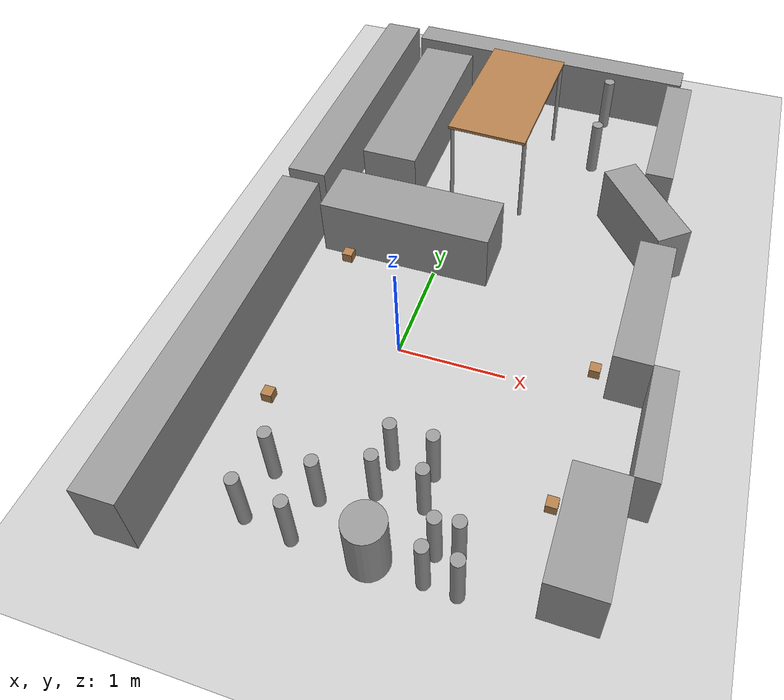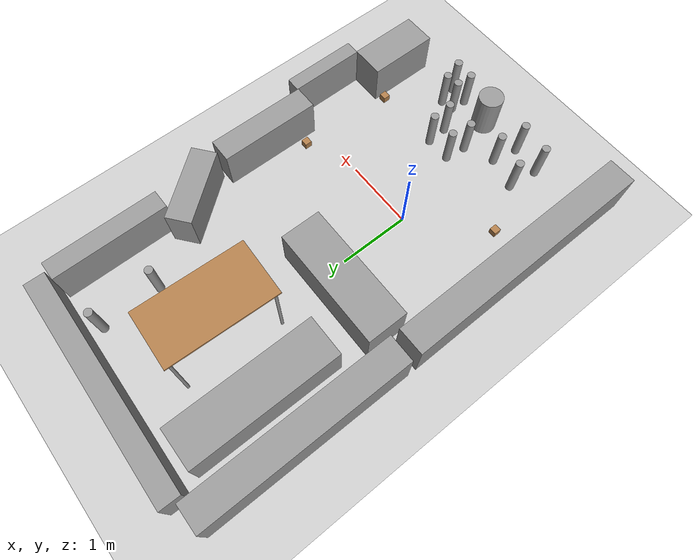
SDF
<sdf version="1.6">
 <world name="default">
  <light name="sun" type="directional">
   <pose>0 0 10 0 -0 0</pose>
   <diffuse>0.8 0.8 0.8 1</diffuse>
   <specular>0.2 0.2 0.2 1</specular>
   <attenuation>
    <range>1000</range>
    <constant>0.9</constant>
    <linear>0.01</linear>
    <quadratic>0.001</quadratic>
   </attenuation>
   <direction>-0.5 0.1 -0.9</direction>
  </light>
  <model name="ground_plane">
   <static>1</static>
   <link name="link">
    <collision name="collision">
     <geometry><plane><normal>0 0 1</normal><size>100 100</size></plane></geometry>
     <surface><friction><ode><mu>100</mu><mu2>50</mu2></ode></friction></surface>
    </collision>
    <visual name="visual">
     <cast_shadows>0</cast_shadows>
     <geometry><plane><normal>0 0 1</normal><size>100 100</size></plane></geometry>
     <material>
      <script><uri>file://media/materials/scripts/gazebo.material</uri><name>Gazebo/Grey</name></script>
     </material>
    </visual>
   </link>
  </model>
  <gravity>0 0 -9.8</gravity>
  <magnetic_field>6e-06 2.3e-05 -4.2e-05</magnetic_field>
  <atmosphere type="adiabatic"/>
  <physics name="default_physics" default="0" type="ode">
   <max_step_size>0.001</max_step_size>
   <real_time_factor>1</real_time_factor>
   <real_time_update_rate>1000</real_time_update_rate>
  </physics>
  <scene><ambient>0.4 0.4 0.4 1</ambient><background>0.7 0.7 0.7 1</background><shadows>1</shadows></scene>
  <spherical_coordinates>
   <surface_model>EARTH_WGS84</surface_model>
   <latitude_deg>0</latitude_deg>
   <longitude_deg>0</longitude_deg>
   <elevation>0</elevation>
   <heading_deg>0</heading_deg>
  </spherical_coordinates>
  <model name="unit_box">
   <pose>-0.311795 1.28478 0.303688 9e-06 -0 -0.001875</pose>
   <link name="link">
    <inertial>
     <mass>1</mass>
     <inertia>
      <ixx>0.166667</ixx>
      <ixy>0</ixy>
      <ixz>0</ixz>
      <iyy>0.166667</iyy>
      <iyz>0</iyz>
      <izz>0.166667</izz>
     </inertia>
    </inertial>
    <collision name="collision"><geometry><box><size>1.70206 0.569629 0.607381</size></box></geometry></collision>
    <visual name="visual">
     <geometry><box><size>1.70206 0.569629 0.607381</size></box></geometry>
     <material>
      <script><name>Gazebo/Grey</name><uri>file://media/materials/scripts/gazebo.material</uri></script>
     </material>
    </visual>
   </link>
  </model>
  <model name="unit_cylinder">
   <pose>0.358444 -1.12504 0.304923 0 -0 0.001372</pose>
   <link name="link">
    <inertial>
     <mass>1</mass>
     <inertia><ixx>0.145833</ixx><ixy>0</ixy><ixz>0</ixz><iyy>0.145833</iyy><iyz>0</iyz><izz>0.125</izz></inertia>
    </inertial>
    <collision name="collision">
     <geometry><cylinder><radius>0.056641</radius><length>0.609856</length></cylinder></geometry>
    </collision>
    <visual name="visual">
     <geometry><cylinder><radius>0.056641</radius><length>0.609856</length></cylinder></geometry>
     <material>
      <script><name>Gazebo/Grey</name><uri>file://media/materials/scripts/gazebo.material</uri></script>
     </material>
    </visual>
   </link>
  </model>
  <model name="unit_cylinder_clone">
   <pose>0.712411 -1.12237 0.304923 0 -0 0.001089</pose>
   <link name="link">
    <inertial>
     <mass>1</mass>
     <inertia><ixx>0.145833</ixx><ixy>0</ixy><ixz>0</ixz><iyy>0.145833</iyy><iyz>0</iyz><izz>0.125</izz></inertia>
    </inertial>
    <collision name="collision">
     <geometry><cylinder><radius>0.056641</radius><length>0.609856</length></cylinder></geometry>
    </collision>
    <visual name="visual">
     <geometry><cylinder><radius>0.056641</radius><length>0.609856</length></cylinder></geometry>
     <material>
      <script><name>Gazebo/Grey</name><uri>file://media/materials/scripts/gazebo.material</uri></script>
     </material>
    </visual>
   </link>
  </model>
  <model name="unit_cylinder_clone_0">
   <pose>0.321199 -1.42245 0.304923 0 -0 0.003382</pose>
   <link name="link">
    <inertial>
     <mass>1</mass>
     <inertia><ixx>0.145833</ixx><ixy>0</ixy><ixz>0</ixz><iyy>0.145833</iyy><iyz>0</iyz><izz>0.125</izz></inertia>
    </inertial>
    <collision name="collision">
     <geometry><cylinder><radius>0.056641</radius><length>0.609856</length></cylinder></geometry>
    </collision>
    <visual name="visual">
     <geometry><cylinder><radius>0.056641</radius><length>0.609856</length></cylinder></geometry>
     <material>
      <script><name>Gazebo/Grey</name><uri>file://media/materials/scripts/gazebo.material</uri></script>
     </material>
    </visual>
   </link>
  </model>
  <model name="unit_cylinder_clone_1">
   <pose>0.730387 -1.41571 0.304923 0 -0 0.00321</pose>
   <link name="link">
    <inertial>
     <mass>1</mass>
     <inertia><ixx>0.145833</ixx><ixy>0</ixy><ixz>0</ixz><iyy>0.145833</iyy><iyz>0</iyz><izz>0.125</izz></inertia>
    </inertial>
    <collision name="collision">
     <geometry><cylinder><radius>0.056641</radius><length>0.609856</length></cylinder></geometry>
    </collision>
    <visual name="visual">
     <geometry><cylinder><radius>0.056641</radius><length>0.609856</length></cylinder></geometry>
     <material>
      <script><name>Gazebo/Grey</name><uri>file://media/materials/scripts/gazebo.material</uri></script>
     </material>
    </visual>
   </link>
  </model>
  <model name="unit_cylinder_clone_2">
   <pose>0.46977 -1.94113 0.304924 0 -0 0.000112</pose>
   <link name="link">
    <inertial>
     <mass>1</mass>
     <inertia><ixx>0.145833</ixx><ixy>0</ixy><ixz>0</ixz><iyy>0.145833</iyy><iyz>0</iyz><izz>0.125</izz></inertia>
    </inertial>
    <collision name="collision">
     <geometry><cylinder><radius>0.174974</radius><length>0.609856</length></cylinder></geometry>
    </collision>
    <visual name="visual">
     <geometry><cylinder><radius>0.174974</radius><length>0.609856</length></cylinder></geometry>
     <material>
      <script><name>Gazebo/Grey</name><uri>file://media/materials/scripts/gazebo.material</uri></script>
     </material>
    </visual>
   </link>
  </model>
  <model name="unit_cylinder_clone_3">
   <pose>-0.085979 -1.60546 0.304919 0 -0 0.007193</pose>
   <link name="link">
    <inertial>
     <mass>1</mass>
     <inertia><ixx>0.145833</ixx><ixy>0</ixy><ixz>0</ixz><iyy>0.145833</iyy><iyz>0</iyz><izz>0.125</izz></inertia>
    </inertial>
    <collision name="collision">
     <geometry><cylinder><radius>0.056641</radius><length>0.609856</length></cylinder></geometry>
    </collision>
    <visual name="visual">
     <geometry><cylinder><radius>0.056641</radius><length>0.609856</length></cylinder></geometry>
     <material>
      <script><name>Gazebo/Grey</name><uri>file://media/materials/scripts/gazebo.material</uri></script>
     </material>
    </visual>
   </link>
  </model>
  <model name="unit_cylinder_clone_4">
   <pose>-0.157879 -1.97568 0.304923 0 -0 0.003248</pose>
   <link name="link">
    <inertial>
     <mass>1</mass>
     <inertia><ixx>0.145833</ixx><ixy>0</ixy><ixz>0</ixz><iyy>0.145833</iyy><iyz>0</iyz><izz>0.125</izz></inertia>
    </inertial>
    <collision name="collision">
     <geometry><cylinder><radius>0.056641</radius><length>0.609856</length></cylinder></geometry>
    </collision>
    <visual name="visual">
     <geometry><cylinder><radius>0.056641</radius><length>0.609856</length></cylinder></geometry>
     <material>
      <script><name>Gazebo/Grey</name><uri>file://media/materials/scripts/gazebo.material</uri></script>
     </material>
    </visual>
   </link>
  </model>
  <model name="unit_cylinder_clone_5">
   <pose>-0.58124 -1.92098 0.304923 0 -0 0.00161</pose>
   <link name="link">
    <inertial>
     <mass>1</mass>
     <inertia><ixx>0.145833</ixx><ixy>0</ixy><ixz>0</ixz><iyy>0.145833</iyy><iyz>0</iyz><izz>0.125</izz></inertia>
    </inertial>
    <collision name="collision">
     <geometry><cylinder><radius>0.056641</radius><length>0.609856</length></cylinder></geometry>
    </collision>
    <visual name="visual">
     <geometry><cylinder><radius>0.056641</radius><length>0.609856</length></cylinder></geometry>
     <material>
      <script><name>Gazebo/Grey</name><uri>file://media/materials/scripts/gazebo.material</uri></script>
     </material>
    </visual>
   </link>
  </model>
  <model name="unit_cylinder_clone_6">
   <pose>-0.529377 -1.49074 0.304923 0 -0 0.001482</pose>
   <link name="link">
    <inertial>
     <mass>1</mass>
     <inertia><ixx>0.145833</ixx><ixy>0</ixy><ixz>0</ixz><iyy>0.145833</iyy><iyz>0</iyz><izz>0.125</izz></inertia>
    </inertial>
    <collision name="collision">
     <geometry><cylinder><radius>0.056641</radius><length>0.609856</length></cylinder></geometry>
    </collision>
    <visual name="visual">
     <geometry><cylinder><radius>0.056641</radius><length>0.609856</length></cylinder></geometry>
     <material>
      <script><name>Gazebo/Grey</name><uri>file://media/materials/scripts/gazebo.material</uri></script>
     </material>
    </visual>
   </link>
  </model>
  <model name="unit_box_clone_0">
   <pose>2.05284 0.7583 0.30369 0 -2e-06 1.56582</pose>
   <link name="link">
    <inertial>
     <mass>1</mass>
     <inertia>
      <ixx>0.166667</ixx>
      <ixy>0</ixy>
      <ixz>0</ixz>
      <iyy>0.166667</iyy>
      <iyz>0</iyz>
      <izz>0.166667</izz>
     </inertia>
    </inertial>
    <collision name="collision"><geometry><box><size>1.41671 0.339182 0.607382</size></box></geometry></collision>
    <visual name="visual">
     <geometry><box><size>1.41671 0.339182 0.607382</size></box></geometry>
     <material>
      <script><name>Gazebo/Grey</name><uri>file://media/materials/scripts/gazebo.material</uri></script>
     </material>
    </visual>
   </link>
  </model>
  <model name="unit_box_clone_0_clone">
   <pose>2.32529 -0.466885 0.303691 -2e-06 -0 1.57305</pose>
   <link name="link">
    <inertial>
     <mass>1</mass>
     <inertia>
      <ixx>0.166667</ixx>
      <ixy>0</ixy>
      <ixz>0</ixz>
      <iyy>0.166667</iyy>
      <iyz>0</iyz>
      <izz>0.166667</izz>
     </inertia>
    </inertial>
    <collision name="collision"><geometry><box><size>1.06223 0.205529 0.607382</size></box></geometry></collision>
    <visual name="visual">
     <geometry><box><size>1.06223 0.205529 0.607382</size></box></geometry>
     <material>
      <script><name>Gazebo/Grey</name><uri>file://media/materials/scripts/gazebo.material</uri></script>
     </material>
    </visual>
   </link>
  </model>
  <model name="unit_box_clone_0_clone_0">
   <pose>2.00281 -1.48758 0.303691 0 -0 1.57205</pose>
   <link name="link">
    <inertial>
     <mass>1</mass>
     <inertia>
      <ixx>0.166667</ixx>
      <ixy>0</ixy>
      <ixz>0</ixz>
      <iyy>0.166667</iyy>
      <iyz>0</iyz>
      <izz>0.166667</izz>
     </inertia>
    </inertial>
    <collision name="collision">
     <geometry><box><size>0.978144 0.467544 0.607382</size></box></geometry>
    </collision>
    <visual name="visual">
     <geometry><box><size>0.978144 0.467544 0.607382</size></box></geometry>
     <material>
      <script><name>Gazebo/Grey</name><uri>file://media/materials/scripts/gazebo.material</uri></script>
     </material>
    </visual>
   </link>
  </model>
  <model name="unit_cylinder_clone_1_clone">
   <pose>0.932287 -1.75458 0.304921 0 -0 0.006499</pose>
   <link name="link">
    <inertial>
     <mass>1</mass>
     <inertia><ixx>0.145833</ixx><ixy>0</ixy><ixz>0</ixz><iyy>0.145833</iyy><iyz>0</iyz><izz>0.125</izz></inertia>
    </inertial>
    <collision name="collision">
     <geometry><cylinder><radius>0.056641</radius><length>0.609856</length></cylinder></geometry>
    </collision>
    <visual name="visual">
     <geometry><cylinder><radius>0.056641</radius><length>0.609856</length></cylinder></geometry>
     <material>
      <script><name>Gazebo/Grey</name><uri>file://media/materials/scripts/gazebo.material</uri></script>
     </material>
    </visual>
   </link>
  </model>
  <model name="unit_cylinder_clone_1_clone_0">
   <pose>1.11421 -1.72835 0.304923 0 -0 0.002377</pose>
   <link name="link">
    <inertial>
     <mass>1</mass>
     <inertia><ixx>0.145833</ixx><ixy>0</ixy><ixz>0</ixz><iyy>0.145833</iyy><iyz>0</iyz><izz>0.125</izz></inertia>
    </inertial>
    <collision name="collision">
     <geometry><cylinder><radius>0.056641</radius><length>0.609856</length></cylinder></geometry>
    </collision>
    <visual name="visual">
     <geometry><cylinder><radius>0.056641</radius><length>0.609856</length></cylinder></geometry>
     <material>
      <script><name>Gazebo/Grey</name><uri>file://media/materials/scripts/gazebo.material</uri></script>
     </material>
    </visual>
   </link>
  </model>
  <model name="unit_cylinder_clone_1_clone_1">
   <pose>0.917272 -1.98464 0.304923 0 -0 0.002041</pose>
   <link name="link">
    <inertial>
     <mass>1</mass>
     <inertia><ixx>0.145833</ixx><ixy>0</ixy><ixz>0</ixz><iyy>0.145833</iyy><iyz>0</iyz><izz>0.125</izz></inertia>
    </inertial>
    <collision name="collision">
     <geometry><cylinder><radius>0.056641</radius><length>0.609856</length></cylinder></geometry>
    </collision>
    <visual name="visual">
     <geometry><cylinder><radius>0.056641</radius><length>0.609856</length></cylinder></geometry>
     <material>
      <script><name>Gazebo/Grey</name><uri>file://media/materials/scripts/gazebo.material</uri></script>
     </material>
    </visual>
   </link>
  </model>
  <model name="unit_cylinder_clone_1_clone_2">
   <pose>1.18677 -1.99872 0.304923 0 -0 0.003244</pose>
   <link name="link">
    <inertial>
     <mass>1</mass>
     <inertia><ixx>0.145833</ixx><ixy>0</ixy><ixz>0</ixz><iyy>0.145833</iyy><iyz>0</iyz><izz>0.125</izz></inertia>
    </inertial>
    <collision name="collision">
     <geometry><cylinder><radius>0.056641</radius><length>0.609856</length></cylinder></geometry>
    </collision>
    <visual name="visual">
     <geometry><cylinder><radius>0.056641</radius><length>0.609856</length></cylinder></geometry>
     <material>
      <script><name>Gazebo/Grey</name><uri>file://media/materials/scripts/gazebo.material</uri></script>
     </material>
    </visual>
   </link>
  </model>
  <model name="unit_box_clone_0_clone_clone">
   <pose>1.85681 2.03101 0.303691 0 -0 2.24562</pose>
   <link name="link">
    <inertial>
     <mass>1</mass>
     <inertia>
      <ixx>0.166667</ixx>
      <ixy>0</ixy>
      <ixz>0</ixz>
      <iyy>0.166667</iyy>
      <iyz>0</iyz>
      <izz>0.166667</izz>
     </inertia>
    </inertial>
    <collision name="collision"><geometry><box><size>1.06223 0.356426 0.607382</size></box></geometry></collision>
    <visual name="visual">
     <geometry><box><size>1.06223 0.356426 0.607382</size></box></geometry>
     <material>
      <script><name>Gazebo/Grey</name><uri>file://media/materials/scripts/gazebo.material</uri></script>
     </material>
    </visual>
   </link>
  </model>
  <model name="unit_box_clone_1">
   <pose>-0.782095 2.92848 0.303654 0 -3.6e-05 -1.5742</pose>
   <link name="link">
    <inertial>
     <mass>1</mass>
     <inertia>
      <ixx>0.166667</ixx>
      <ixy>0</ixy>
      <ixz>0</ixz>
      <iyy>0.166667</iyy>
      <iyz>0</iyz>
      <izz>0.166667</izz>
     </inertia>
    </inertial>
    <collision name="collision"><geometry><box><size>2.05172 0.569629 0.607382</size></box></geometry></collision>
    <visual name="visual">
     <geometry><box><size>2.05172 0.569629 0.607382</size></box></geometry>
     <material>
      <script><name>Gazebo/Grey</name><uri>file://media/materials/scripts/gazebo.material</uri></script>
     </material>
    </visual>
   </link>
  </model>
  <model name="unit_cylinder_clone_clone">
   <pose>1.17367 3.08132 0.304923 0 -0 0.004903</pose>
   <link name="link">
    <inertial>
     <mass>1</mass>
     <inertia><ixx>0.145833</ixx><ixy>0</ixy><ixz>0</ixz><iyy>0.145833</iyy><iyz>0</iyz><izz>0.125</izz></inertia>
    </inertial>
    <collision name="collision">
     <geometry><cylinder><radius>0.056641</radius><length>0.609856</length></cylinder></geometry>
    </collision>
    <visual name="visual">
     <geometry><cylinder><radius>0.056641</radius><length>0.609856</length></cylinder></geometry>
     <material>
      <script><name>Gazebo/Grey</name><uri>file://media/materials/scripts/gazebo.material</uri></script>
     </material>
    </visual>
   </link>
  </model>
  <model name="unit_cylinder_clone_clone_0">
   <pose>1.1502 3.91441 0.304927 1e-06 -1e-06 0.00458</pose>
   <link name="link">
    <inertial>
     <mass>1</mass>
     <inertia><ixx>0.145833</ixx><ixy>0</ixy><ixz>0</ixz><iyy>0.145833</iyy><iyz>0</iyz><izz>0.125</izz></inertia>
    </inertial>
    <collision name="collision">
     <geometry><cylinder><radius>0.056641</radius><length>0.609856</length></cylinder></geometry>
    </collision>
    <visual name="visual">
     <geometry><cylinder><radius>0.056641</radius><length>0.609856</length></cylinder></geometry>
     <material>
      <script><name>Gazebo/Grey</name><uri>file://media/materials/scripts/gazebo.material</uri></script>
     </material>
    </visual>
   </link>
  </model>
  <model name="unit_box_clone_clone">
   <pose>0.364221 4.24607 0.302054 -0.000201 -4e-06 1.55178</pose>
   <link name="link">
    <inertial>
     <mass>1</mass>
     <inertia>
      <ixx>0.166667</ixx>
      <ixy>0</ixy>
      <ixz>0</ixz>
      <iyy>0.166667</iyy>
      <iyz>0</iyz>
      <izz>0.166667</izz>
     </inertia>
    </inertial>
    <collision name="collision"><geometry><box><size>0.27855 3.13414 0.604736</size></box></geometry></collision>
    <visual name="visual">
     <geometry><box><size>0.27855 3.13414 0.604736</size></box></geometry>
     <material>
      <script><name>Gazebo/Grey</name><uri>file://media/materials/scripts/gazebo.material</uri></script>
     </material>
    </visual>
   </link>
  </model>
  <model name="unit_box_0">
   <pose>-1.44575 -0.591401 0.33937 0.00032 -3e-06 0.00618</pose>
   <link name="link">
    <inertial>
     <mass>1</mass>
     <inertia>
      <ixx>0.166667</ixx>
      <ixy>0</ixy>
      <ixz>0</ixz>
      <iyy>0.166667</iyy>
      <iyz>0</iyz>
      <izz>0.166667</izz>
     </inertia>
    </inertial>
    <collision name="collision"><geometry><box><size>0.389101 3.61355 0.679893</size></box></geometry></collision>
    <visual name="visual">
     <geometry><box><size>0.389101 3.61355 0.679893</size></box></geometry>
     <material>
      <script><name>Gazebo/Grey</name><uri>file://media/materials/scripts/gazebo.material</uri></script>
     </material>
    </visual>
   </link>
  </model>
  <model name="unit_box_0_clone">
   <pose>-1.4511 2.77772 0.337988 -0.000137 -0 -0.001417</pose>
   <link name="link">
    <inertial>
     <mass>1</mass>
     <inertia>
      <ixx>0.166667</ixx>
      <ixy>0</ixy>
      <ixz>0</ixz>
      <iyy>0.166667</iyy>
      <iyz>0</iyz>
      <izz>0.166667</izz>
     </inertia>
    </inertial>
    <collision name="collision"><geometry><box><size>0.389101 2.88027 0.67637</size></box></geometry></collision>
    <visual name="visual">
     <geometry><box><size>0.389101 2.88027 0.67637</size></box></geometry>
     <material>
      <script><name>Gazebo/Grey</name><uri>file://media/materials/scripts/gazebo.material</uri></script>
     </material>
    </visual>
   </link>
  </model>
  <model name="unit_box_1">
   <pose>1.92429 3.24948 0.299871 2e-06 1e-06 0.000254</pose>
   <link name="link">
    <inertial>
     <mass>1</mass>
     <inertia>
      <ixx>0.166667</ixx>
      <ixy>0</ixy>
      <ixz>0</ixz>
      <iyy>0.166667</iyy>
      <iyz>0</iyz>
      <izz>0.166667</izz>
     </inertia>
    </inertial>
    <collision name="collision"><geometry><box><size>0.274323 1.6036 0.599747</size></box></geometry></collision>
    <visual name="visual">
     <geometry><box><size>0.274323 1.6036 0.599747</size></box></geometry>
     <material>
      <script><name>Gazebo/Grey</name><uri>file://media/materials/scripts/gazebo.material</uri></script>
     </material>
    </visual>
   </link>
  </model>
  <audio><device>default</device></audio>
  <model name="wood_cube_10cm">
   <link name="link">
    <pose>0 0 0.05 0 -0 0</pose>
    <inertial>
     <mass>0.5167</mass>
     <inertia>
      <ixx>0.000861167</ixx>
      <ixy>0</ixy>
      <ixz>0</ixz>
      <iyy>0.000861167</iyy>
      <iyz>0</iyz>
      <izz>0.000861167</izz>
     </inertia>
    </inertial>
    <collision name="collision">
     <geometry><box><size>0.1 0.1 0.1</size></box></geometry>
     <surface>
      <contact>
       <poissons_ratio>0.347</poissons_ratio>
       <elastic_modulus>8.8e+09</elastic_modulus>
       <ode><kp>100000</kp><kd>100</kd><max_vel>100</max_vel><min_depth>0.001</min_depth></ode>
      </contact>
      <friction>
       <torsional>
        <coefficient>1</coefficient>
        <use_patch_radius>0</use_patch_radius>
        <surface_radius>0.01</surface_radius>
       </torsional>
      </friction>
     </surface>
    </collision>
    <visual name="visual">
     <geometry><box><size>0.1 0.1 0.1</size></box></geometry>
     <material>
      <script><uri>file://media/materials/scripts/gazebo.material</uri><name>Gazebo/Wood</name></script>
     </material>
    </visual>
   </link>
   <pose>-0.882653 0.941044 -0.001013 0 -0 0</pose>
  </model>
  <model name="wood_cube_10cm_0">
   <link name="link">
    <pose>0 0 0.05 0 -0 0</pose>
    <inertial>
     <mass>0.5167</mass>
     <inertia>
      <ixx>0.000861167</ixx>
      <ixy>0</ixy>
      <ixz>0</ixz>
      <iyy>0.000861167</iyy>
      <iyz>0</iyz>
      <izz>0.000861167</izz>
     </inertia>
    </inertial>
    <collision name="collision">
     <geometry><box><size>0.1 0.1 0.1</size></box></geometry>
     <surface>
      <contact>
       <poissons_ratio>0.347</poissons_ratio>
       <elastic_modulus>8.8e+09</elastic_modulus>
       <ode><kp>100000</kp><kd>100</kd><max_vel>100</max_vel><min_depth>0.001</min_depth></ode>
      </contact>
      <friction>
       <torsional>
        <coefficient>1</coefficient>
        <use_patch_radius>0</use_patch_radius>
        <surface_radius>0.01</surface_radius>
       </torsional>
      </friction>
     </surface>
    </collision>
    <visual name="visual">
     <geometry><box><size>0.1 0.1 0.1</size></box></geometry>
     <material>
      <script><uri>file://media/materials/scripts/gazebo.material</uri><name>Gazebo/Wood</name></script>
     </material>
    </visual>
   </link>
   <pose>-0.901908 -0.834275 -0.001013 0 -0 0</pose>
  </model>
  <model name="wood_cube_10cm_1">
   <link name="link">
    <pose>0 0 0.05 0 -0 0</pose>
    <inertial>
     <mass>0.5167</mass>
     <inertia>
      <ixx>0.000861167</ixx>
      <ixy>0</ixy>
      <ixz>0</ixz>
      <iyy>0.000861167</iyy>
      <iyz>0</iyz>
      <izz>0.000861167</izz>
     </inertia>
    </inertial>
    <collision name="collision">
     <geometry><box><size>0.1 0.1 0.1</size></box></geometry>
     <surface>
      <contact>
       <poissons_ratio>0.347</poissons_ratio>
       <elastic_modulus>8.8e+09</elastic_modulus>
       <ode><kp>100000</kp><kd>100</kd><max_vel>100</max_vel><min_depth>0.001</min_depth></ode>
      </contact>
      <friction>
       <torsional>
        <coefficient>1</coefficient>
        <use_patch_radius>0</use_patch_radius>
        <surface_radius>0.01</surface_radius>
       </torsional>
      </friction>
     </surface>
    </collision>
    <visual name="visual">
     <geometry><box><size>0.1 0.1 0.1</size></box></geometry>
     <material>
      <script><uri>file://media/materials/scripts/gazebo.material</uri><name>Gazebo/Wood</name></script>
     </material>
    </visual>
   </link>
   <pose>1.7553 0.287029 -0.001013 0 -0 0</pose>
  </model>
  <model name="wood_cube_10cm_2">
   <link name="link">
    <pose>0 0 0.05 0 -0 0</pose>
    <inertial>
     <mass>0.5167</mass>
     <inertia>
      <ixx>0.000861167</ixx>
      <ixy>0</ixy>
      <ixz>0</ixz>
      <iyy>0.000861167</iyy>
      <iyz>0</iyz>
      <izz>0.000861167</izz>
     </inertia>
    </inertial>
    <collision name="collision">
     <geometry><box><size>0.1 0.1 0.1</size></box></geometry>
     <surface>
      <contact>
       <poissons_ratio>0.347</poissons_ratio>
       <elastic_modulus>8.8e+09</elastic_modulus>
       <ode><kp>100000</kp><kd>100</kd><max_vel>100</max_vel><min_depth>0.001</min_depth></ode>
      </contact>
      <friction>
       <torsional>
        <coefficient>1</coefficient>
        <use_patch_radius>0</use_patch_radius>
        <surface_radius>0.01</surface_radius>
       </torsional>
      </friction>
     </surface>
    </collision>
    <visual name="visual">
     <geometry><box><size>0.1 0.1 0.1</size></box></geometry>
     <material>
      <script><uri>file://media/materials/scripts/gazebo.material</uri><name>Gazebo/Wood</name></script>
     </material>
    </visual>
   </link>
   <pose>1.68565 -1.10178 -0.001013 0 -0 0</pose>
  </model>
  <model name="table">
   <static>1</static>
   <link name="link">
    <collision name="surface">
     <pose>0 0 1 0 -0 0</pose>
     <geometry><box><size>1.5 0.8 0.03</size></box></geometry>
     <surface><friction><ode><mu>0.6</mu><mu2>0.6</mu2></ode></friction></surface>
    </collision>
    <visual name="visual1">
     <pose>0 0 1 0 -0 0</pose>
     <geometry><box><size>1.5 0.8 0.03</size></box></geometry>
     <material>
      <script><uri>file://media/materials/scripts/gazebo.material</uri><name>Gazebo/Wood</name></script>
     </material>
    </visual>
    <collision name="front_left_leg">
     <pose>0.68 0.38 0.5 0 -0 0</pose>
     <geometry><cylinder><radius>0.02</radius><length>1</length></cylinder></geometry>
    </collision>
    <visual name="front_left_leg">
     <pose>0.68 0.38 0.5 0 -0 0</pose>
     <geometry><cylinder><radius>0.02</radius><length>1</length></cylinder></geometry>
     <material>
      <script><uri>file://media/materials/scripts/gazebo.material</uri><name>Gazebo/Grey</name></script>
     </material>
    </visual>
    <collision name="front_right_leg">
     <pose>0.68 -0.38 0.5 0 -0 0</pose>
     <geometry><cylinder><radius>0.02</radius><length>1</length></cylinder></geometry>
    </collision>
    <visual name="front_right_leg">
     <pose>0.68 -0.38 0.5 0 -0 0</pose>
     <geometry><cylinder><radius>0.02</radius><length>1</length></cylinder></geometry>
     <material>
      <script><uri>file://media/materials/scripts/gazebo.material</uri><name>Gazebo/Grey</name></script>
     </material>
    </visual>
    <collision name="back_right_leg">
     <pose>-0.68 -0.38 0.5 0 -0 0</pose>
     <geometry><cylinder><radius>0.02</radius><length>1</length></cylinder></geometry>
    </collision>
    <visual name="back_right_leg">
     <pose>-0.68 -0.38 0.5 0 -0 0</pose>
     <geometry><cylinder><radius>0.02</radius><length>1</length></cylinder></geometry>
     <material>
      <script><uri>file://media/materials/scripts/gazebo.material</uri><name>Gazebo/Grey</name></script>
     </material>
    </visual>
    <collision name="back_left_leg">
     <pose>-0.68 0.38 0.5 0 -0 0</pose>
     <geometry><cylinder><radius>0.02</radius><length>1</length></cylinder></geometry>
    </collision>
    <visual name="back_left_leg">
     <pose>-0.68 0.38 0.5 0 -0 0</pose>
     <geometry><cylinder><radius>0.02</radius><length>1</length></cylinder></geometry>
     <material>
      <script><uri>file://media/materials/scripts/gazebo.material</uri><name>Gazebo/Grey</name></script>
     </material>
    </visual>
   </link>
   <pose>0.237741 2.79527 -0 0 0 -1.61248</pose>
  </model>
 </world>
</sdf>
